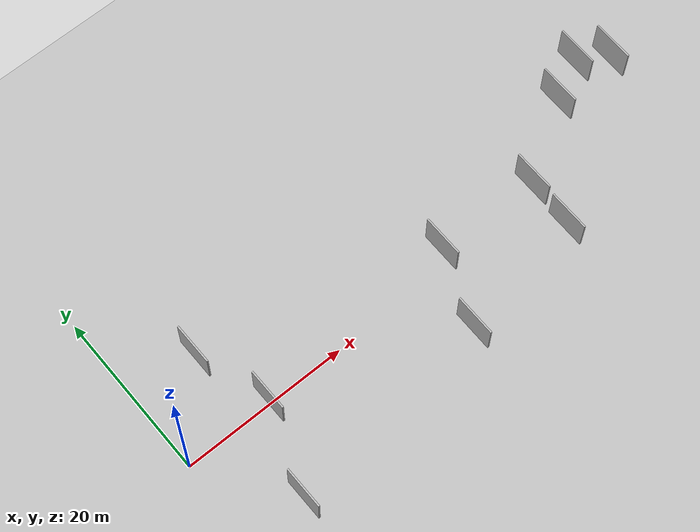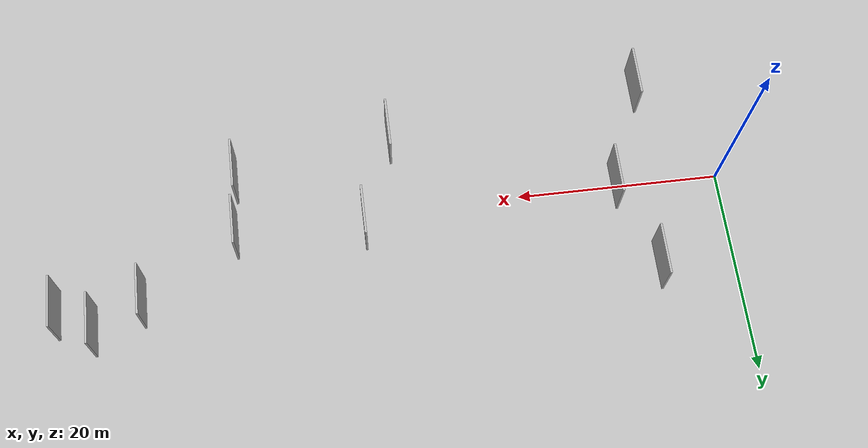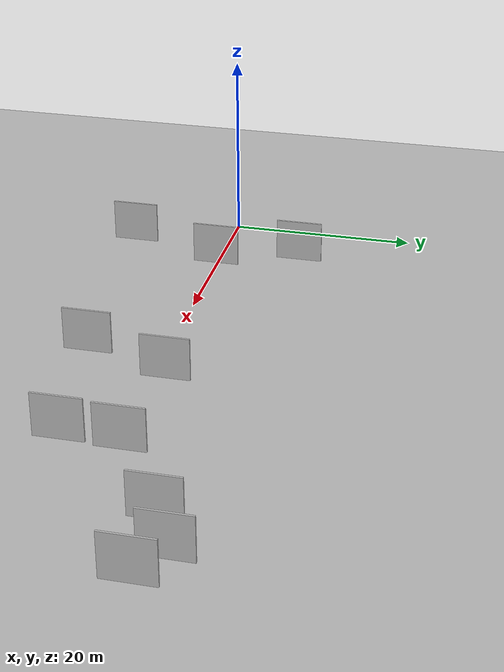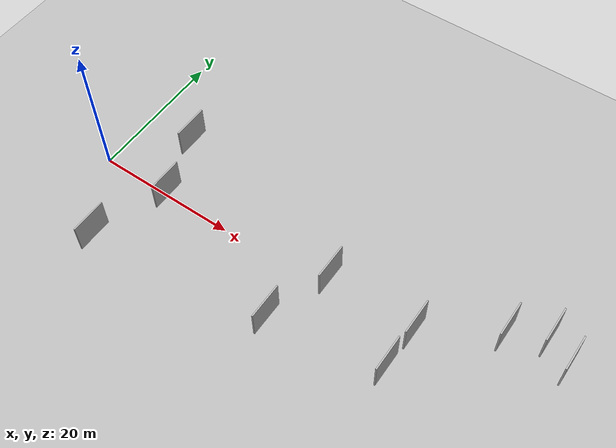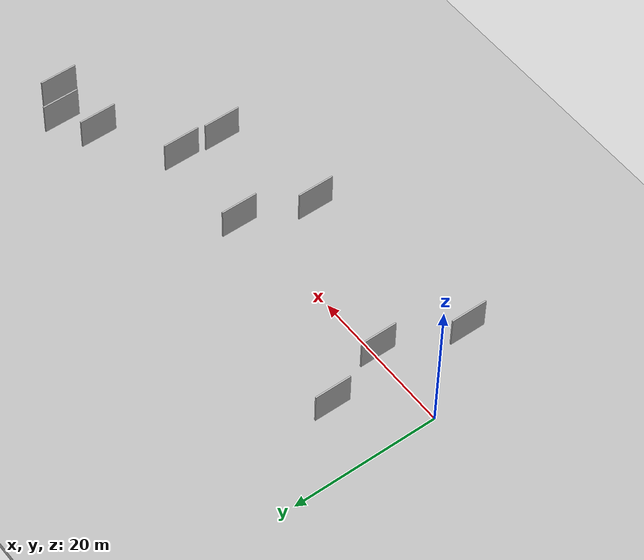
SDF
<?xml version="1.0" encoding="utf-8"?>

<sdf version="1.6">

   <world name="default">

      <gui fullscreen="0">

         <camera name="user_camera">

            <pose>-15 0 4.57585 0 0 0</pose>

            <view_controller>orbit</view_controller>

         </camera>

      </gui>

      <scene>

         <sky>

           <clouds>

             <speed>12</speed>

           </clouds>

         </sky>

         <ambient>0.4 0.4 0.4 1</ambient>

         <background>0.7 0.7 0.7 1</background>

         <shadows>1</shadows>

      </scene>

      <gravity>0 0 -9.8066</gravity>

      <magnetic_field>6e-06 2.3e-05 -4.2e-05</magnetic_field>

      <physics default="0" name="default_physics" type="ode">

         <ode>

            <solver>

               <type>quick</type>

               <iters>10</iters>

               <sor>1.0</sor>

               <use_dynamic_moi_rescaling>0</use_dynamic_moi_rescaling>

            </solver>

            <constraints>

               <cfm>0</cfm>

               <erp>0.2</erp>

               <contact_max_correcting_vel>100</contact_max_correcting_vel>

               <contact_surface_layer>0.001</contact_surface_layer>

            </constraints>

         </ode>

         <max_step_size>0.004</max_step_size>

         <real_time_factor>1</real_time_factor>

         <real_time_update_rate>250</real_time_update_rate>

      </physics>

      <light name="sun" type="directional">

         <cast_shadows>1</cast_shadows>

         <pose>0 0 10 0 0 0</pose>

         <diffuse>0.8 0.8 0.8 1</diffuse>

         <specular>0.2 0.2 0.2 1</specular>

         <attenuation>

            <range>1000</range>

            <constant>0.9</constant>

            <linear>0.01</linear>

            <quadratic>0.001</quadratic>

         </attenuation>

         <direction>-0.5 0.1 -0.9</direction>

      </light>

      <include>

         <name>ground_plane_1</name>

         <uri>model://HANNAS_ground_plane</uri>

         <pose>0 0 0  0 0 0</pose>

      </include>

      <include>

         <name>ground_plane_2</name>

         <uri>model://HANNAS_ground_plane</uri>

         <pose>100 0 0  0 0 0</pose>

      </include>

      <model name="HANNAS_wall_1">

         <static>1</static>

         <pose frame="">32.1982 -7.3972 0.0 0.000000 0.000000 1.570796</pose>

         <link name="link">

            <pose frame="">0 0 2.50 0 0 0</pose>

            <collision name="collision">

               <geometry>

                  <box>

                     <size>5.00 0.2 5.00</size>

                  </box>

               </geometry>

               <max_contacts>10</max_contacts>

               <surface>

                  <contact>

                     <ode/>

                  </contact>

                  <bounce/>

                  <friction>

                     <torsional>

                        <ode/>

                     </torsional>

                     <ode/>

                  </friction>

               </surface>

            </collision>

            <visual name="visual">

               <cast_shadows>0</cast_shadows>

               <geometry>

                  <box>

                     <size>5.00 0.2 5.00</size>

                  </box>

               </geometry>

               <material>

                  <script>

                     <uri>model://HANNAS_wall/materials/scripts</uri>

                     <uri>model://HANNAS_wall/materials/textures</uri>

                     <name>vrc/HANNAS_wall</name>

                  </script>

               </material>

            </visual>

            <self_collide>0</self_collide>

            <enable_wind>0</enable_wind>

            <kinematic>0</kinematic>

         </link>

      </model>

      <model name="HANNAS_wall_2">

         <static>1</static>

         <pose frame="">65.3441 7.3840 0.0 0.000000 0.000000 1.570796</pose>

         <link name="link">

            <pose frame="">0 0 2.50 0 0 0</pose>

            <collision name="collision">

               <geometry>

                  <box>

                     <size>5.00 0.2 5.00</size>

                  </box>

               </geometry>

               <max_contacts>10</max_contacts>

               <surface>

                  <contact>

                     <ode/>

                  </contact>

                  <bounce/>

                  <friction>

                     <torsional>

                        <ode/>

                     </torsional>

                     <ode/>

                  </friction>

               </surface>

            </collision>

            <visual name="visual">

               <cast_shadows>0</cast_shadows>

               <geometry>

                  <box>

                     <size>5.00 0.2 5.00</size>

                  </box>

               </geometry>

               <material>

                  <script>

                     <uri>model://HANNAS_wall/materials/scripts</uri>

                     <uri>model://HANNAS_wall/materials/textures</uri>

                     <name>vrc/HANNAS_wall</name>

                  </script>

               </material>

            </visual>

            <self_collide>0</self_collide>

            <enable_wind>0</enable_wind>

            <kinematic>0</kinematic>

         </link>

      </model>

      <model name="HANNAS_wall_3">

         <static>1</static>

         <pose frame="">47.7189 -4.7763 0.0 0.000000 0.000000 1.570796</pose>

         <link name="link">

            <pose frame="">0 0 2.50 0 0 0</pose>

            <collision name="collision">

               <geometry>

                  <box>

                     <size>5.00 0.2 5.00</size>

                  </box>

               </geometry>

               <max_contacts>10</max_contacts>

               <surface>

                  <contact>

                     <ode/>

                  </contact>

                  <bounce/>

                  <friction>

                     <torsional>

                        <ode/>

                     </torsional>

                     <ode/>

                  </friction>

               </surface>

            </collision>

            <visual name="visual">

               <cast_shadows>0</cast_shadows>

               <geometry>

                  <box>

                     <size>5.00 0.2 5.00</size>

                  </box>

               </geometry>

               <material>

                  <script>

                     <uri>model://HANNAS_wall/materials/scripts</uri>

                     <uri>model://HANNAS_wall/materials/textures</uri>

                     <name>vrc/HANNAS_wall</name>

                  </script>

               </material>

            </visual>

            <self_collide>0</self_collide>

            <enable_wind>0</enable_wind>

            <kinematic>0</kinematic>

         </link>

      </model>

      <model name="HANNAS_wall_4">

         <static>1</static>

         <pose frame="">6.8140 -10.3158 0.0 0.000000 0.000000 1.570796</pose>

         <link name="link">

            <pose frame="">0 0 2.50 0 0 0</pose>

            <collision name="collision">

               <geometry>

                  <box>

                     <size>5.00 0.2 5.00</size>

                  </box>

               </geometry>

               <max_contacts>10</max_contacts>

               <surface>

                  <contact>

                     <ode/>

                  </contact>

                  <bounce/>

                  <friction>

                     <torsional>

                        <ode/>

                     </torsional>

                     <ode/>

                  </friction>

               </surface>

            </collision>

            <visual name="visual">

               <cast_shadows>0</cast_shadows>

               <geometry>

                  <box>

                     <size>5.00 0.2 5.00</size>

                  </box>

               </geometry>

               <material>

                  <script>

                     <uri>model://HANNAS_wall/materials/scripts</uri>

                     <uri>model://HANNAS_wall/materials/textures</uri>

                     <name>vrc/HANNAS_wall</name>

                  </script>

               </material>

            </visual>

            <self_collide>0</self_collide>

            <enable_wind>0</enable_wind>

            <kinematic>0</kinematic>

         </link>

      </model>

      <model name="HANNAS_wall_5">

         <static>1</static>

         <pose frame="">48.0214 1.0848 0.0 0.000000 0.000000 1.570796</pose>

         <link name="link">

            <pose frame="">0 0 2.50 0 0 0</pose>

            <collision name="collision">

               <geometry>

                  <box>

                     <size>5.00 0.2 5.00</size>

                  </box>

               </geometry>

               <max_contacts>10</max_contacts>

               <surface>

                  <contact>

                     <ode/>

                  </contact>

                  <bounce/>

                  <friction>

                     <torsional>

                        <ode/>

                     </torsional>

                     <ode/>

                  </friction>

               </surface>

            </collision>

            <visual name="visual">

               <cast_shadows>0</cast_shadows>

               <geometry>

                  <box>

                     <size>5.00 0.2 5.00</size>

                  </box>

               </geometry>

               <material>

                  <script>

                     <uri>model://HANNAS_wall/materials/scripts</uri>

                     <uri>model://HANNAS_wall/materials/textures</uri>

                     <name>vrc/HANNAS_wall</name>

                  </script>

               </material>

            </visual>

            <self_collide>0</self_collide>

            <enable_wind>0</enable_wind>

            <kinematic>0</kinematic>

         </link>

      </model>

      <model name="HANNAS_wall_6">

         <static>1</static>

         <pose frame="">35.4953 1.5428 0.0 0.000000 0.000000 1.570796</pose>

         <link name="link">

            <pose frame="">0 0 2.50 0 0 0</pose>

            <collision name="collision">

               <geometry>

                  <box>

                     <size>5.00 0.2 5.00</size>

                  </box>

               </geometry>

               <max_contacts>10</max_contacts>

               <surface>

                  <contact>

                     <ode/>

                  </contact>

                  <bounce/>

                  <friction>

                     <torsional>

                        <ode/>

                     </torsional>

                     <ode/>

                  </friction>

               </surface>

            </collision>

            <visual name="visual">

               <cast_shadows>0</cast_shadows>

               <geometry>

                  <box>

                     <size>5.00 0.2 5.00</size>

                  </box>

               </geometry>

               <material>

                  <script>

                     <uri>model://HANNAS_wall/materials/scripts</uri>

                     <uri>model://HANNAS_wall/materials/textures</uri>

                     <name>vrc/HANNAS_wall</name>

                  </script>

               </material>

            </visual>

            <self_collide>0</self_collide>

            <enable_wind>0</enable_wind>

            <kinematic>0</kinematic>

         </link>

      </model>

      <model name="HANNAS_wall_7">

         <static>1</static>

         <pose frame="">57.1895 7.0918 0.0 0.000000 0.000000 1.570796</pose>

         <link name="link">

            <pose frame="">0 0 2.50 0 0 0</pose>

            <collision name="collision">

               <geometry>

                  <box>

                     <size>5.00 0.2 5.00</size>

                  </box>

               </geometry>

               <max_contacts>10</max_contacts>

               <surface>

                  <contact>

                     <ode/>

                  </contact>

                  <bounce/>

                  <friction>

                     <torsional>

                        <ode/>

                     </torsional>

                     <ode/>

                  </friction>

               </surface>

            </collision>

            <visual name="visual">

               <cast_shadows>0</cast_shadows>

               <geometry>

                  <box>

                     <size>5.00 0.2 5.00</size>

                  </box>

               </geometry>

               <material>

                  <script>

                     <uri>model://HANNAS_wall/materials/scripts</uri>

                     <uri>model://HANNAS_wall/materials/textures</uri>

                     <name>vrc/HANNAS_wall</name>

                  </script>

               </material>

            </visual>

            <self_collide>0</self_collide>

            <enable_wind>0</enable_wind>

            <kinematic>0</kinematic>

         </link>

      </model>

      <model name="HANNAS_wall_8">

         <static>1</static>

         <pose frame="">10.5177 0.0256 0.0 0.000000 0.000000 1.570796</pose>

         <link name="link">

            <pose frame="">0 0 2.50 0 0 0</pose>

            <collision name="collision">

               <geometry>

                  <box>

                     <size>5.00 0.2 5.00</size>

                  </box>

               </geometry>

               <max_contacts>10</max_contacts>

               <surface>

                  <contact>

                     <ode/>

                  </contact>

                  <bounce/>

                  <friction>

                     <torsional>

                        <ode/>

                     </torsional>

                     <ode/>

                  </friction>

               </surface>

            </collision>

            <visual name="visual">

               <cast_shadows>0</cast_shadows>

               <geometry>

                  <box>

                     <size>5.00 0.2 5.00</size>

                  </box>

               </geometry>

               <material>

                  <script>

                     <uri>model://HANNAS_wall/materials/scripts</uri>

                     <uri>model://HANNAS_wall/materials/textures</uri>

                     <name>vrc/HANNAS_wall</name>

                  </script>

               </material>

            </visual>

            <self_collide>0</self_collide>

            <enable_wind>0</enable_wind>

            <kinematic>0</kinematic>

         </link>

      </model>

      <model name="HANNAS_wall_9">

         <static>1</static>

         <pose frame="">7.6743 8.8062 0.0 0.000000 0.000000 1.570796</pose>

         <link name="link">

            <pose frame="">0 0 2.50 0 0 0</pose>

            <collision name="collision">

               <geometry>

                  <box>

                     <size>5.00 0.2 5.00</size>

                  </box>

               </geometry>

               <max_contacts>10</max_contacts>

               <surface>

                  <contact>

                     <ode/>

                  </contact>

                  <bounce/>

                  <friction>

                     <torsional>

                        <ode/>

                     </torsional>

                     <ode/>

                  </friction>

               </surface>

            </collision>

            <visual name="visual">

               <cast_shadows>0</cast_shadows>

               <geometry>

                  <box>

                     <size>5.00 0.2 5.00</size>

                  </box>

               </geometry>

               <material>

                  <script>

                     <uri>model://HANNAS_wall/materials/scripts</uri>

                     <uri>model://HANNAS_wall/materials/textures</uri>

                     <name>vrc/HANNAS_wall</name>

                  </script>

               </material>

            </visual>

            <self_collide>0</self_collide>

            <enable_wind>0</enable_wind>

            <kinematic>0</kinematic>

         </link>

      </model>

      <model name="HANNAS_wall_10">

         <static>1</static>

         <pose frame="">61.8782 9.3883 0.0 0.000000 0.000000 1.570796</pose>

         <link name="link">

            <pose frame="">0 0 2.50 0 0 0</pose>

            <collision name="collision">

               <geometry>

                  <box>

                     <size>5.00 0.2 5.00</size>

                  </box>

               </geometry>

               <max_contacts>10</max_contacts>

               <surface>

                  <contact>

                     <ode/>

                  </contact>

                  <bounce/>

                  <friction>

                     <torsional>

                        <ode/>

                     </torsional>

                     <ode/>

                  </friction>

               </surface>

            </collision>

            <visual name="visual">

               <cast_shadows>0</cast_shadows>

               <geometry>

                  <box>

                     <size>5.00 0.2 5.00</size>

                  </box>

               </geometry>

               <material>

                  <script>

                     <uri>model://HANNAS_wall/materials/scripts</uri>

                     <uri>model://HANNAS_wall/materials/textures</uri>

                     <name>vrc/HANNAS_wall</name>

                  </script>

               </material>

            </visual>

            <self_collide>0</self_collide>

            <enable_wind>0</enable_wind>

            <kinematic>0</kinematic>

         </link>

      </model>

   </world>

</sdf>

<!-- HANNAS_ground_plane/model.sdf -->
<sdf version="1.4">
<model name="HANNAS_ground_plane">
  <static>true</static>
    <link name="link">
      <collision name="collision">
        <geometry>
          <plane>
            <normal>0 0 1</normal>
            <size>1000 1000</size>
          </plane>
        </geometry>
        <surface>
          <friction>
            <ode>
              <mu>100</mu>
              <mu2>50</mu2>
            </ode>
          </friction>
        </surface>
      </collision>
      <visual name="visual">
        <cast_shadows>false</cast_shadows>
        <geometry>
          <plane>
            <normal>0 0 1</normal>
            <size>1000 1000</size>
          </plane>
        </geometry>
        <material>
          <script>
            <uri>model://HANNAS_ground_plane/materials/scripts/HANNAS_ground_plane.material</uri>
	    <uri>model://HANNAS_ground_plane/materials/textures</uri>
            <name>HANNASGroundPlane/Image</name>
          </script>
        </material>
      </visual>
    </link>
  </model>
</sdf>
